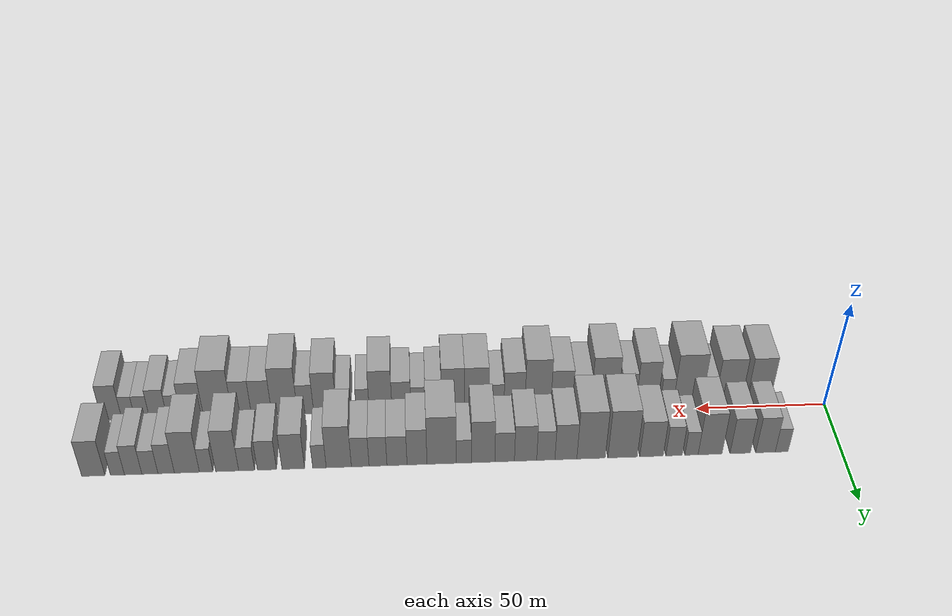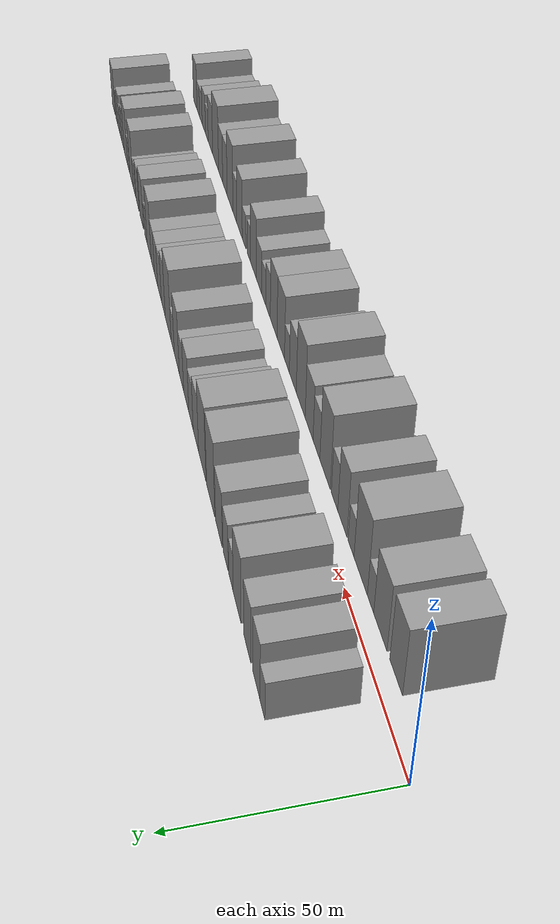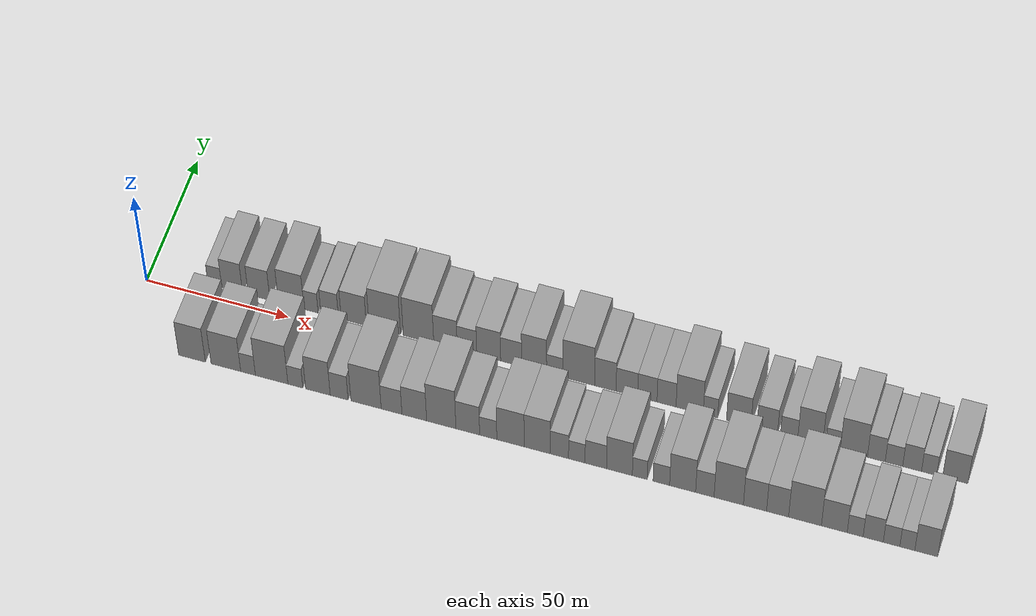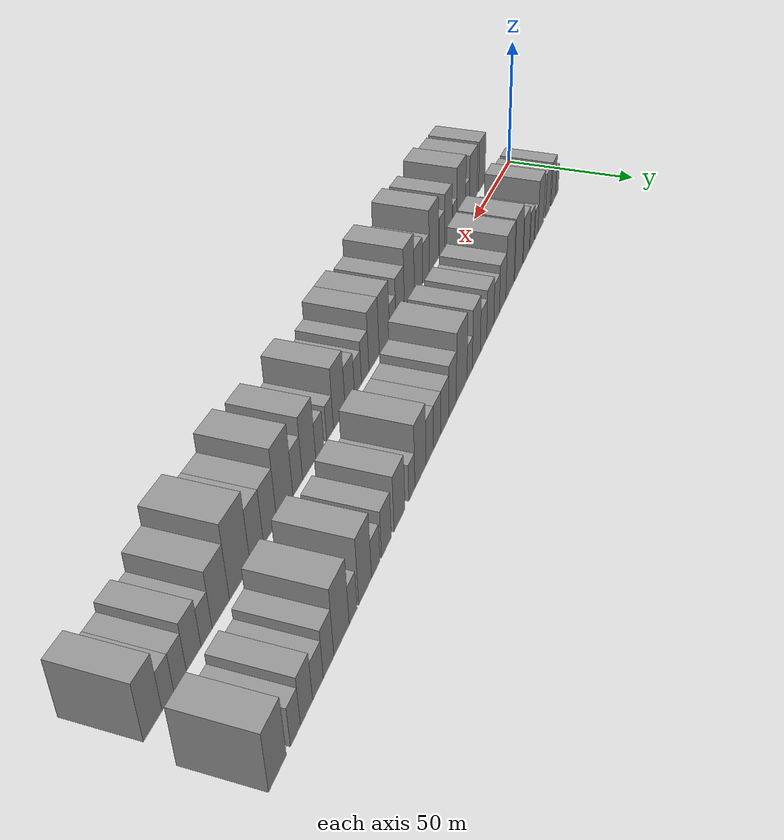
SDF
<sdf version="1.6">
 <world name="default">
  <scene>
   <sky><clouds><speed>12</speed></clouds></sky>
   <ambient>0.4 0.4 0.4 1</ambient>
   <background>0.7 0.7 0.7 1</background>
   <shadows>1</shadows>
  </scene>
  <gravity>0 0 -9.8066</gravity>
  <magnetic_field>6e-06 2.3e-05 -4.2e-05</magnetic_field>
  <physics default="0" name="default_physics" type="ode">
   <ode>
    <solver>
     <type>quick</type>
     <iters>10</iters>
     <sor>1.0</sor>
     <use_dynamic_moi_rescaling>0</use_dynamic_moi_rescaling>
    </solver>
    <constraints>
     <cfm>0</cfm>
     <erp>0.2</erp>
     <contact_max_correcting_vel>100</contact_max_correcting_vel>
     <contact_surface_layer>0.001</contact_surface_layer>
    </constraints>
   </ode>
   <max_step_size>0.004</max_step_size>
   <real_time_factor>1</real_time_factor>
   <real_time_update_rate>250</real_time_update_rate>
  </physics>
  <light name="sun" type="directional">
   <pose>0 0 10 0 0 0</pose>
   <diffuse>0.8 0.8 0.8 1</diffuse>
   <specular>0.2 0.2 0.2 1</specular>
   <attenuation>
    <range>1000</range>
    <constant>0.9</constant>
    <linear>0.01</linear>
    <quadratic>0.001</quadratic>
   </attenuation>
   <direction>-0.5 0.1 -0.9</direction>
  </light>
  <model name="building_1">
   <static>1</static>
   <pose>22.4527 14.5000 0 0.000000 0.000000 1.570796</pose>
   <link name="link">
    <pose>0 0 6.00 0 0 0</pose>
    <collision name="collision"><geometry><box><size>20.0000 4.9055 12.0000</size></box></geometry></collision>
    <visual name="visual">
     <cast_shadows>0</cast_shadows>
     <geometry><box><size>20.0000 4.9055 12.0000</size></box></geometry>
     <material>
      <script>
       <uri>model://grey_wall/materials/scripts</uri>
       <uri>model://grey_wall/materials/textures</uri>
       <name>vrc/grey_wall</name>
      </script>
     </material>
    </visual>
   </link>
  </model>
  <model name="building_2">
   <static>1</static>
   <pose>28.5818 14.5000 0 0.000000 0.000000 1.570796</pose>
   <link name="link">
    <pose>0 0 9.00 0 0 0</pose>
    <collision name="collision"><geometry><box><size>20.0000 7.3527 18.0000</size></box></geometry></collision>
    <visual name="visual">
     <cast_shadows>0</cast_shadows>
     <geometry><box><size>20.0000 7.3527 18.0000</size></box></geometry>
     <material>
      <script>
       <uri>model://grey_wall/materials/scripts</uri>
       <uri>model://grey_wall/materials/textures</uri>
       <name>vrc/grey_wall</name>
      </script>
     </material>
    </visual>
   </link>
  </model>
  <model name="building_3">
   <static>1</static>
   <pose>38.1045 14.5000 0 0.000000 0.000000 1.570796</pose>
   <link name="link">
    <pose>0 0 9.00 0 0 0</pose>
    <collision name="collision"><geometry><box><size>20.0000 7.6926 18.0000</size></box></geometry></collision>
    <visual name="visual">
     <cast_shadows>0</cast_shadows>
     <geometry><box><size>20.0000 7.6926 18.0000</size></box></geometry>
     <material>
      <script>
       <uri>model://grey_wall/materials/scripts</uri>
       <uri>model://grey_wall/materials/textures</uri>
       <name>vrc/grey_wall</name>
      </script>
     </material>
    </visual>
   </link>
  </model>
  <model name="building_4">
   <static>1</static>
   <pose>49.4682 14.5000 0 0.000000 0.000000 1.570796</pose>
   <link name="link">
    <pose>0 0 10.50 0 0 0</pose>
    <collision name="collision"><geometry><box><size>20.0000 9.0349 21.0000</size></box></geometry></collision>
    <visual name="visual">
     <cast_shadows>0</cast_shadows>
     <geometry><box><size>20.0000 9.0349 21.0000</size></box></geometry>
     <material>
      <script>
       <uri>model://grey_wall/materials/scripts</uri>
       <uri>model://grey_wall/materials/textures</uri>
       <name>vrc/grey_wall</name>
      </script>
     </material>
    </visual>
   </link>
  </model>
  <model name="building_5">
   <static>1</static>
   <pose>56.4635 14.5000 0 0.000000 0.000000 1.570796</pose>
   <link name="link">
    <pose>0 0 6.00 0 0 0</pose>
    <collision name="collision"><geometry><box><size>20.0000 4.9556 12.0000</size></box></geometry></collision>
    <visual name="visual">
     <cast_shadows>0</cast_shadows>
     <geometry><box><size>20.0000 4.9556 12.0000</size></box></geometry>
     <material>
      <script>
       <uri>model://grey_wall/materials/scripts</uri>
       <uri>model://grey_wall/materials/textures</uri>
       <name>vrc/grey_wall</name>
      </script>
     </material>
    </visual>
   </link>
  </model>
  <model name="building_6">
   <static>1</static>
   <pose>63.0217 14.5000 0 0.000000 0.000000 1.570796</pose>
   <link name="link">
    <pose>0 0 7.50 0 0 0</pose>
    <collision name="collision"><geometry><box><size>20.0000 6.1607 15.0000</size></box></geometry></collision>
    <visual name="visual">
     <cast_shadows>0</cast_shadows>
     <geometry><box><size>20.0000 6.1607 15.0000</size></box></geometry>
     <material>
      <script>
       <uri>model://grey_wall/materials/scripts</uri>
       <uri>model://grey_wall/materials/textures</uri>
       <name>vrc/grey_wall</name>
      </script>
     </material>
    </visual>
   </link>
  </model>
  <model name="building_7">
   <static>1</static>
   <pose>71.4967 14.5000 0 0.000000 0.000000 1.570796</pose>
   <link name="link">
    <pose>0 0 9.00 0 0 0</pose>
    <collision name="collision"><geometry><box><size>20.0000 8.7894 18.0000</size></box></geometry></collision>
    <visual name="visual">
     <cast_shadows>0</cast_shadows>
     <geometry><box><size>20.0000 8.7894 18.0000</size></box></geometry>
     <material>
      <script>
       <uri>model://grey_wall/materials/scripts</uri>
       <uri>model://grey_wall/materials/textures</uri>
       <name>vrc/grey_wall</name>
      </script>
     </material>
    </visual>
   </link>
  </model>
  <model name="building_8">
   <static>1</static>
   <pose>82.3796 14.5000 0 0.000000 0.000000 1.570796</pose>
   <link name="link">
    <pose>0 0 12.00 0 0 0</pose>
    <collision name="collision"><geometry><box><size>20.0000 10.9763 24.0000</size></box></geometry></collision>
    <visual name="visual">
     <cast_shadows>0</cast_shadows>
     <geometry><box><size>20.0000 10.9763 24.0000</size></box></geometry>
     <material>
      <script>
       <uri>model://grey_wall/materials/scripts</uri>
       <uri>model://grey_wall/materials/textures</uri>
       <name>vrc/grey_wall</name>
      </script>
     </material>
    </visual>
   </link>
  </model>
  <model name="building_9">
   <static>1</static>
   <pose>94.1800 14.5000 0 0.000000 0.000000 1.570796</pose>
   <link name="link">
    <pose>0 0 12.00 0 0 0</pose>
    <collision name="collision"><geometry><box><size>20.0000 10.6246 24.0000</size></box></geometry></collision>
    <visual name="visual">
     <cast_shadows>0</cast_shadows>
     <geometry><box><size>20.0000 10.6246 24.0000</size></box></geometry>
     <material>
      <script>
       <uri>model://grey_wall/materials/scripts</uri>
       <uri>model://grey_wall/materials/textures</uri>
       <name>vrc/grey_wall</name>
      </script>
     </material>
    </visual>
   </link>
  </model>
  <model name="building_10">
   <static>1</static>
   <pose>103.5946 14.5000 0 0.000000 0.000000 1.570796</pose>
   <link name="link">
    <pose>0 0 9.00 0 0 0</pose>
    <collision name="collision"><geometry><box><size>20.0000 8.2046 18.0000</size></box></geometry></collision>
    <visual name="visual">
     <cast_shadows>0</cast_shadows>
     <geometry><box><size>20.0000 8.2046 18.0000</size></box></geometry>
     <material>
      <script>
       <uri>model://grey_wall/materials/scripts</uri>
       <uri>model://grey_wall/materials/textures</uri>
       <name>vrc/grey_wall</name>
      </script>
     </material>
    </visual>
   </link>
  </model>
  <model name="building_11">
   <static>1</static>
   <pose>111.0911 14.5000 0 0.000000 0.000000 1.570796</pose>
   <link name="link">
    <pose>0 0 7.50 0 0 0</pose>
    <collision name="collision"><geometry><box><size>20.0000 6.7883 15.0000</size></box></geometry></collision>
    <visual name="visual">
     <cast_shadows>0</cast_shadows>
     <geometry><box><size>20.0000 6.7883 15.0000</size></box></geometry>
     <material>
      <script>
       <uri>model://grey_wall/materials/scripts</uri>
       <uri>model://grey_wall/materials/textures</uri>
       <name>vrc/grey_wall</name>
      </script>
     </material>
    </visual>
   </link>
  </model>
  <model name="building_12">
   <static>1</static>
   <pose>118.6386 14.5000 0 0.000000 0.000000 1.570796</pose>
   <link name="link">
    <pose>0 0 9.00 0 0 0</pose>
    <collision name="collision"><geometry><box><size>20.0000 8.3067 18.0000</size></box></geometry></collision>
    <visual name="visual">
     <cast_shadows>0</cast_shadows>
     <geometry><box><size>20.0000 8.3067 18.0000</size></box></geometry>
     <material>
      <script>
       <uri>model://grey_wall/materials/scripts</uri>
       <uri>model://grey_wall/materials/textures</uri>
       <name>vrc/grey_wall</name>
      </script>
     </material>
    </visual>
   </link>
  </model>
  <model name="building_13">
   <static>1</static>
   <pose>126.4335 14.5000 0 0.000000 0.000000 1.570796</pose>
   <link name="link">
    <pose>0 0 7.50 0 0 0</pose>
    <collision name="collision"><geometry><box><size>20.0000 7.2832 15.0000</size></box></geometry></collision>
    <visual name="visual">
     <cast_shadows>0</cast_shadows>
     <geometry><box><size>20.0000 7.2832 15.0000</size></box></geometry>
     <material>
      <script>
       <uri>model://grey_wall/materials/scripts</uri>
       <uri>model://grey_wall/materials/textures</uri>
       <name>vrc/grey_wall</name>
      </script>
     </material>
    </visual>
   </link>
  </model>
  <model name="building_14">
   <static>1</static>
   <pose>134.3953 14.5000 0 0.000000 0.000000 1.570796</pose>
   <link name="link">
    <pose>0 0 10.50 0 0 0</pose>
    <collision name="collision"><geometry><box><size>20.0000 8.6404 21.0000</size></box></geometry></collision>
    <visual name="visual">
     <cast_shadows>0</cast_shadows>
     <geometry><box><size>20.0000 8.6404 21.0000</size></box></geometry>
     <material>
      <script>
       <uri>model://grey_wall/materials/scripts</uri>
       <uri>model://grey_wall/materials/textures</uri>
       <name>vrc/grey_wall</name>
      </script>
     </material>
    </visual>
   </link>
  </model>
  <model name="building_15">
   <static>1</static>
   <pose>141.5295 14.5000 0 0.000000 0.000000 1.570796</pose>
   <link name="link">
    <pose>0 0 6.00 0 0 0</pose>
    <collision name="collision"><geometry><box><size>20.0000 5.6282 12.0000</size></box></geometry></collision>
    <visual name="visual">
     <cast_shadows>0</cast_shadows>
     <geometry><box><size>20.0000 5.6282 12.0000</size></box></geometry>
     <material>
      <script>
       <uri>model://grey_wall/materials/scripts</uri>
       <uri>model://grey_wall/materials/textures</uri>
       <name>vrc/grey_wall</name>
      </script>
     </material>
    </visual>
   </link>
  </model>
  <model name="building_16">
   <static>1</static>
   <pose>149.8142 14.5000 0 0.000000 0.000000 1.570796</pose>
   <link name="link">
    <pose>0 0 12.00 0 0 0</pose>
    <collision name="collision"><geometry><box><size>20.0000 10.9413 24.0000</size></box></geometry></collision>
    <visual name="visual">
     <cast_shadows>0</cast_shadows>
     <geometry><box><size>20.0000 10.9413 24.0000</size></box></geometry>
     <material>
      <script>
       <uri>model://grey_wall/materials/scripts</uri>
       <uri>model://grey_wall/materials/textures</uri>
       <name>vrc/grey_wall</name>
      </script>
     </material>
    </visual>
   </link>
  </model>
  <model name="building_17">
   <static>1</static>
   <pose>158.9749 14.5000 0 0.000000 0.000000 1.570796</pose>
   <link name="link">
    <pose>0 0 9.00 0 0 0</pose>
    <collision name="collision"><geometry><box><size>20.0000 7.3801 18.0000</size></box></geometry></collision>
    <visual name="visual">
     <cast_shadows>0</cast_shadows>
     <geometry><box><size>20.0000 7.3801 18.0000</size></box></geometry>
     <material>
      <script>
       <uri>model://grey_wall/materials/scripts</uri>
       <uri>model://grey_wall/materials/textures</uri>
       <name>vrc/grey_wall</name>
      </script>
     </material>
    </visual>
   </link>
  </model>
  <model name="building_18">
   <static>1</static>
   <pose>166.3791 14.5000 0 0.000000 0.000000 1.570796</pose>
   <link name="link">
    <pose>0 0 7.50 0 0 0</pose>
    <collision name="collision"><geometry><box><size>20.0000 7.4284 15.0000</size></box></geometry></collision>
    <visual name="visual">
     <cast_shadows>0</cast_shadows>
     <geometry><box><size>20.0000 7.4284 15.0000</size></box></geometry>
     <material>
      <script>
       <uri>model://grey_wall/materials/scripts</uri>
       <uri>model://grey_wall/materials/textures</uri>
       <name>vrc/grey_wall</name>
      </script>
     </material>
    </visual>
   </link>
  </model>
  <model name="building_19">
   <static>1</static>
   <pose>173.3979 14.5000 0 0.000000 0.000000 1.570796</pose>
   <link name="link">
    <pose>0 0 7.50 0 0 0</pose>
    <collision name="collision"><geometry><box><size>20.0000 6.6092 15.0000</size></box></geometry></collision>
    <visual name="visual">
     <cast_shadows>0</cast_shadows>
     <geometry><box><size>20.0000 6.6092 15.0000</size></box></geometry>
     <material>
      <script>
       <uri>model://grey_wall/materials/scripts</uri>
       <uri>model://grey_wall/materials/textures</uri>
       <name>vrc/grey_wall</name>
      </script>
     </material>
    </visual>
   </link>
  </model>
  <model name="building_20">
   <static>1</static>
   <pose>179.9726 14.5000 0 0.000000 0.000000 1.570796</pose>
   <link name="link">
    <pose>0 0 7.50 0 0 0</pose>
    <collision name="collision"><geometry><box><size>20.0000 6.5402 15.0000</size></box></geometry></collision>
    <visual name="visual">
     <cast_shadows>0</cast_shadows>
     <geometry><box><size>20.0000 6.5402 15.0000</size></box></geometry>
     <material>
      <script>
       <uri>model://grey_wall/materials/scripts</uri>
       <uri>model://grey_wall/materials/textures</uri>
       <name>vrc/grey_wall</name>
      </script>
     </material>
    </visual>
   </link>
  </model>
  <model name="building_21">
   <static>1</static>
   <pose>187.8923 14.5000 0 0.000000 0.000000 1.570796</pose>
   <link name="link">
    <pose>0 0 10.50 0 0 0</pose>
    <collision name="collision"><geometry><box><size>20.0000 9.2992 21.0000</size></box></geometry></collision>
    <visual name="visual">
     <cast_shadows>0</cast_shadows>
     <geometry><box><size>20.0000 9.2992 21.0000</size></box></geometry>
     <material>
      <script>
       <uri>model://grey_wall/materials/scripts</uri>
       <uri>model://grey_wall/materials/textures</uri>
       <name>vrc/grey_wall</name>
      </script>
     </material>
    </visual>
   </link>
  </model>
  <model name="building_22">
   <static>1</static>
   <pose>195.0158 14.5000 0 0.000000 0.000000 1.570796</pose>
   <link name="link">
    <pose>0 0 6.00 0 0 0</pose>
    <collision name="collision"><geometry><box><size>20.0000 4.9476 12.0000</size></box></geometry></collision>
    <visual name="visual">
     <cast_shadows>0</cast_shadows>
     <geometry><box><size>20.0000 4.9476 12.0000</size></box></geometry>
     <material>
      <script>
       <uri>model://grey_wall/materials/scripts</uri>
       <uri>model://grey_wall/materials/textures</uri>
       <name>vrc/grey_wall</name>
      </script>
     </material>
    </visual>
   </link>
  </model>
  <model name="building_23">
   <static>1</static>
   <pose>204.6551 14.5000 0 0.000000 0.000000 1.570796</pose>
   <link name="link">
    <pose>0 0 9.00 0 0 0</pose>
    <collision name="collision"><geometry><box><size>20.0000 8.3310 18.0000</size></box></geometry></collision>
    <visual name="visual">
     <cast_shadows>0</cast_shadows>
     <geometry><box><size>20.0000 8.3310 18.0000</size></box></geometry>
     <material>
      <script>
       <uri>model://grey_wall/materials/scripts</uri>
       <uri>model://grey_wall/materials/textures</uri>
       <name>vrc/grey_wall</name>
      </script>
     </material>
    </visual>
   </link>
  </model>
  <model name="building_24">
   <static>1</static>
   <pose>214.3445 14.5000 0 0.000000 0.000000 1.570796</pose>
   <link name="link">
    <pose>0 0 7.50 0 0 0</pose>
    <collision name="collision"><geometry><box><size>20.0000 7.0478 15.0000</size></box></geometry></collision>
    <visual name="visual">
     <cast_shadows>0</cast_shadows>
     <geometry><box><size>20.0000 7.0478 15.0000</size></box></geometry>
     <material>
      <script>
       <uri>model://grey_wall/materials/scripts</uri>
       <uri>model://grey_wall/materials/textures</uri>
       <name>vrc/grey_wall</name>
      </script>
     </material>
    </visual>
   </link>
  </model>
  <model name="building_25">
   <static>1</static>
   <pose>221.7925 14.5000 0 0.000000 0.000000 1.570796</pose>
   <link name="link">
    <pose>0 0 6.00 0 0 0</pose>
    <collision name="collision"><geometry><box><size>20.0000 5.8482 12.0000</size></box></geometry></collision>
    <visual name="visual">
     <cast_shadows>0</cast_shadows>
     <geometry><box><size>20.0000 5.8482 12.0000</size></box></geometry>
     <material>
      <script>
       <uri>model://grey_wall/materials/scripts</uri>
       <uri>model://grey_wall/materials/textures</uri>
       <name>vrc/grey_wall</name>
      </script>
     </material>
    </visual>
   </link>
  </model>
  <model name="building_26">
   <static>1</static>
   <pose>228.9413 14.5000 0 0.000000 0.000000 1.570796</pose>
   <link name="link">
    <pose>0 0 10.50 0 0 0</pose>
    <collision name="collision"><geometry><box><size>20.0000 8.4494 21.0000</size></box></geometry></collision>
    <visual name="visual">
     <cast_shadows>0</cast_shadows>
     <geometry><box><size>20.0000 8.4494 21.0000</size></box></geometry>
     <material>
      <script>
       <uri>model://grey_wall/materials/scripts</uri>
       <uri>model://grey_wall/materials/textures</uri>
       <name>vrc/grey_wall</name>
      </script>
     </material>
    </visual>
   </link>
  </model>
  <model name="building_27">
   <static>1</static>
   <pose>236.6416 14.5000 0 0.000000 0.000000 1.570796</pose>
   <link name="link">
    <pose>0 0 6.00 0 0 0</pose>
    <collision name="collision"><geometry><box><size>20.0000 4.9512 12.0000</size></box></geometry></collision>
    <visual name="visual">
     <cast_shadows>0</cast_shadows>
     <geometry><box><size>20.0000 4.9512 12.0000</size></box></geometry>
     <material>
      <script>
       <uri>model://grey_wall/materials/scripts</uri>
       <uri>model://grey_wall/materials/textures</uri>
       <name>vrc/grey_wall</name>
      </script>
     </material>
    </visual>
   </link>
  </model>
  <model name="building_28">
   <static>1</static>
   <pose>243.6999 14.5000 0 0.000000 0.000000 1.570796</pose>
   <link name="link">
    <pose>0 0 10.50 0 0 0</pose>
    <collision name="collision"><geometry><box><size>20.0000 9.1655 21.0000</size></box></geometry></collision>
    <visual name="visual">
     <cast_shadows>0</cast_shadows>
     <geometry><box><size>20.0000 9.1655 21.0000</size></box></geometry>
     <material>
      <script>
       <uri>model://grey_wall/materials/scripts</uri>
       <uri>model://grey_wall/materials/textures</uri>
       <name>vrc/grey_wall</name>
      </script>
     </material>
    </visual>
   </link>
  </model>
  <model name="building_29">
   <static>1</static>
   <pose>251.2862 14.5000 0 0.000000 0.000000 1.570796</pose>
   <link name="link">
    <pose>0 0 7.50 0 0 0</pose>
    <collision name="collision"><geometry><box><size>20.0000 6.0071 15.0000</size></box></geometry></collision>
    <visual name="visual">
     <cast_shadows>0</cast_shadows>
     <geometry><box><size>20.0000 6.0071 15.0000</size></box></geometry>
     <material>
      <script>
       <uri>model://grey_wall/materials/scripts</uri>
       <uri>model://grey_wall/materials/textures</uri>
       <name>vrc/grey_wall</name>
      </script>
     </material>
    </visual>
   </link>
  </model>
  <model name="building_30">
   <static>1</static>
   <pose>257.2351 14.5000 0 0.000000 0.000000 1.570796</pose>
   <link name="link">
    <pose>0 0 6.00 0 0 0</pose>
    <collision name="collision"><geometry><box><size>20.0000 5.8907 12.0000</size></box></geometry></collision>
    <visual name="visual">
     <cast_shadows>0</cast_shadows>
     <geometry><box><size>20.0000 5.8907 12.0000</size></box></geometry>
     <material>
      <script>
       <uri>model://grey_wall/materials/scripts</uri>
       <uri>model://grey_wall/materials/textures</uri>
       <name>vrc/grey_wall</name>
      </script>
     </material>
    </visual>
   </link>
  </model>
  <model name="building_31">
   <static>1</static>
   <pose>263.3478 14.5000 0 0.000000 0.000000 1.570796</pose>
   <link name="link">
    <pose>0 0 7.50 0 0 0</pose>
    <collision name="collision"><geometry><box><size>20.0000 6.3346 15.0000</size></box></geometry></collision>
    <visual name="visual">
     <cast_shadows>0</cast_shadows>
     <geometry><box><size>20.0000 6.3346 15.0000</size></box></geometry>
     <material>
      <script>
       <uri>model://grey_wall/materials/scripts</uri>
       <uri>model://grey_wall/materials/textures</uri>
       <name>vrc/grey_wall</name>
      </script>
     </material>
    </visual>
   </link>
  </model>
  <model name="building_32">
   <static>1</static>
   <pose>269.0631 14.5000 0 0.000000 0.000000 1.570796</pose>
   <link name="link">
    <pose>0 0 6.00 0 0 0</pose>
    <collision name="collision"><geometry><box><size>20.0000 5.0959 12.0000</size></box></geometry></collision>
    <visual name="visual">
     <cast_shadows>0</cast_shadows>
     <geometry><box><size>20.0000 5.0959 12.0000</size></box></geometry>
     <material>
      <script>
       <uri>model://grey_wall/materials/scripts</uri>
       <uri>model://grey_wall/materials/textures</uri>
       <name>vrc/grey_wall</name>
      </script>
     </material>
    </visual>
   </link>
  </model>
  <model name="building_33">
   <static>1</static>
   <pose>277.8406 14.5000 0 0.000000 0.000000 1.570796</pose>
   <link name="link">
    <pose>0 0 9.00 0 0 0</pose>
    <collision name="collision"><geometry><box><size>20.0000 8.4593 18.0000</size></box></geometry></collision>
    <visual name="visual">
     <cast_shadows>0</cast_shadows>
     <geometry><box><size>20.0000 8.4593 18.0000</size></box></geometry>
     <material>
      <script>
       <uri>model://grey_wall/materials/scripts</uri>
       <uri>model://grey_wall/materials/textures</uri>
       <name>vrc/grey_wall</name>
      </script>
     </material>
    </visual>
   </link>
  </model>
  <model name="building_34">
   <static>1</static>
   <pose>24.6891 -14.5000 0 0.000000 0.000000 1.570796</pose>
   <link name="link">
    <pose>0 0 10.50 0 0 0</pose>
    <collision name="collision"><geometry><box><size>20.0000 9.3783 21.0000</size></box></geometry></collision>
    <visual name="visual">
     <cast_shadows>0</cast_shadows>
     <geometry><box><size>20.0000 9.3783 21.0000</size></box></geometry>
     <material>
      <script>
       <uri>model://grey_wall/materials/scripts</uri>
       <uri>model://grey_wall/materials/textures</uri>
       <name>vrc/grey_wall</name>
      </script>
     </material>
    </visual>
   </link>
  </model>
  <model name="building_35">
   <static>1</static>
   <pose>36.5722 -14.5000 0 0.000000 0.000000 1.570796</pose>
   <link name="link">
    <pose>0 0 10.50 0 0 0</pose>
    <collision name="collision"><geometry><box><size>20.0000 10.3879 21.0000</size></box></geometry></collision>
    <visual name="visual">
     <cast_shadows>0</cast_shadows>
     <geometry><box><size>20.0000 10.3879 21.0000</size></box></geometry>
     <material>
      <script>
       <uri>model://grey_wall/materials/scripts</uri>
       <uri>model://grey_wall/materials/textures</uri>
       <name>vrc/grey_wall</name>
      </script>
     </material>
    </visual>
   </link>
  </model>
  <model name="building_36">
   <static>1</static>
   <pose>44.3453 -14.5000 0 0.000000 0.000000 1.570796</pose>
   <link name="link">
    <pose>0 0 6.00 0 0 0</pose>
    <collision name="collision"><geometry><box><size>20.0000 5.1583 12.0000</size></box></geometry></collision>
    <visual name="visual">
     <cast_shadows>0</cast_shadows>
     <geometry><box><size>20.0000 5.1583 12.0000</size></box></geometry>
     <material>
      <script>
       <uri>model://grey_wall/materials/scripts</uri>
       <uri>model://grey_wall/materials/textures</uri>
       <name>vrc/grey_wall</name>
      </script>
     </material>
    </visual>
   </link>
  </model>
  <model name="building_37">
   <static>1</static>
   <pose>52.6037 -14.5000 0 0.000000 0.000000 1.570796</pose>
   <link name="link">
    <pose>0 0 12.00 0 0 0</pose>
    <collision name="collision"><geometry><box><size>20.0000 11.3585 24.0000</size></box></geometry></collision>
    <visual name="visual">
     <cast_shadows>0</cast_shadows>
     <geometry><box><size>20.0000 11.3585 24.0000</size></box></geometry>
     <material>
      <script>
       <uri>model://grey_wall/materials/scripts</uri>
       <uri>model://grey_wall/materials/textures</uri>
       <name>vrc/grey_wall</name>
      </script>
     </material>
    </visual>
   </link>
  </model>
  <model name="building_38">
   <static>1</static>
   <pose>60.8786 -14.5000 0 0.000000 0.000000 1.570796</pose>
   <link name="link">
    <pose>0 0 6.00 0 0 0</pose>
    <collision name="collision"><geometry><box><size>20.0000 5.1912 12.0000</size></box></geometry></collision>
    <visual name="visual">
     <cast_shadows>0</cast_shadows>
     <geometry><box><size>20.0000 5.1912 12.0000</size></box></geometry>
     <material>
      <script>
       <uri>model://grey_wall/materials/scripts</uri>
       <uri>model://grey_wall/materials/textures</uri>
       <name>vrc/grey_wall</name>
      </script>
     </material>
    </visual>
   </link>
  </model>
  <model name="building_39">
   <static>1</static>
   <pose>68.7389 -14.5000 0 0.000000 0.000000 1.570796</pose>
   <link name="link">
    <pose>0 0 10.50 0 0 0</pose>
    <collision name="collision"><geometry><box><size>20.0000 8.5294 21.0000</size></box></geometry></collision>
    <visual name="visual">
     <cast_shadows>0</cast_shadows>
     <geometry><box><size>20.0000 8.5294 21.0000</size></box></geometry>
     <material>
      <script>
       <uri>model://grey_wall/materials/scripts</uri>
       <uri>model://grey_wall/materials/textures</uri>
       <name>vrc/grey_wall</name>
      </script>
     </material>
    </visual>
   </link>
  </model>
  <model name="building_40">
   <static>1</static>
   <pose>76.1103 -14.5000 0 0.000000 0.000000 1.570796</pose>
   <link name="link">
    <pose>0 0 7.50 0 0 0</pose>
    <collision name="collision"><geometry><box><size>20.0000 6.2134 15.0000</size></box></geometry></collision>
    <visual name="visual">
     <cast_shadows>0</cast_shadows>
     <geometry><box><size>20.0000 6.2134 15.0000</size></box></geometry>
     <material>
      <script>
       <uri>model://grey_wall/materials/scripts</uri>
       <uri>model://grey_wall/materials/textures</uri>
       <name>vrc/grey_wall</name>
      </script>
     </material>
    </visual>
   </link>
  </model>
  <model name="building_41">
   <static>1</static>
   <pose>85.4564 -14.5000 0 0.000000 0.000000 1.570796</pose>
   <link name="link">
    <pose>0 0 12.00 0 0 0</pose>
    <collision name="collision"><geometry><box><size>20.0000 10.4787 24.0000</size></box></geometry></collision>
    <visual name="visual">
     <cast_shadows>0</cast_shadows>
     <geometry><box><size>20.0000 10.4787 24.0000</size></box></geometry>
     <material>
      <script>
       <uri>model://grey_wall/materials/scripts</uri>
       <uri>model://grey_wall/materials/textures</uri>
       <name>vrc/grey_wall</name>
      </script>
     </material>
    </visual>
   </link>
  </model>
  <model name="building_42">
   <static>1</static>
   <pose>94.2822 -14.5000 0 0.000000 0.000000 1.570796</pose>
   <link name="link">
    <pose>0 0 7.50 0 0 0</pose>
    <collision name="collision"><geometry><box><size>20.0000 7.1730 15.0000</size></box></geometry></collision>
    <visual name="visual">
     <cast_shadows>0</cast_shadows>
     <geometry><box><size>20.0000 7.1730 15.0000</size></box></geometry>
     <material>
      <script>
       <uri>model://grey_wall/materials/scripts</uri>
       <uri>model://grey_wall/materials/textures</uri>
       <name>vrc/grey_wall</name>
      </script>
     </material>
    </visual>
   </link>
  </model>
  <model name="building_43">
   <static>1</static>
   <pose>102.1374 -14.5000 0 0.000000 0.000000 1.570796</pose>
   <link name="link">
    <pose>0 0 9.00 0 0 0</pose>
    <collision name="collision"><geometry><box><size>20.0000 8.5374 18.0000</size></box></geometry></collision>
    <visual name="visual">
     <cast_shadows>0</cast_shadows>
     <geometry><box><size>20.0000 8.5374 18.0000</size></box></geometry>
     <material>
      <script>
       <uri>model://grey_wall/materials/scripts</uri>
       <uri>model://grey_wall/materials/textures</uri>
       <name>vrc/grey_wall</name>
      </script>
     </material>
    </visual>
   </link>
  </model>
  <model name="building_44">
   <static>1</static>
   <pose>111.4532 -14.5000 0 0.000000 0.000000 1.570796</pose>
   <link name="link">
    <pose>0 0 12.00 0 0 0</pose>
    <collision name="collision"><geometry><box><size>20.0000 10.0942 24.0000</size></box></geometry></collision>
    <visual name="visual">
     <cast_shadows>0</cast_shadows>
     <geometry><box><size>20.0000 10.0942 24.0000</size></box></geometry>
     <material>
      <script>
       <uri>model://grey_wall/materials/scripts</uri>
       <uri>model://grey_wall/materials/textures</uri>
       <name>vrc/grey_wall</name>
      </script>
     </material>
    </visual>
   </link>
  </model>
  <model name="building_45">
   <static>1</static>
   <pose>120.5824 -14.5000 0 0.000000 0.000000 1.570796</pose>
   <link name="link">
    <pose>0 0 9.00 0 0 0</pose>
    <collision name="collision"><geometry><box><size>20.0000 8.1641 18.0000</size></box></geometry></collision>
    <visual name="visual">
     <cast_shadows>0</cast_shadows>
     <geometry><box><size>20.0000 8.1641 18.0000</size></box></geometry>
     <material>
      <script>
       <uri>model://grey_wall/materials/scripts</uri>
       <uri>model://grey_wall/materials/textures</uri>
       <name>vrc/grey_wall</name>
      </script>
     </material>
    </visual>
   </link>
  </model>
  <model name="building_46">
   <static>1</static>
   <pose>127.6196 -14.5000 0 0.000000 0.000000 1.570796</pose>
   <link name="link">
    <pose>0 0 6.00 0 0 0</pose>
    <collision name="collision"><geometry><box><size>20.0000 5.9102 12.0000</size></box></geometry></collision>
    <visual name="visual">
     <cast_shadows>0</cast_shadows>
     <geometry><box><size>20.0000 5.9102 12.0000</size></box></geometry>
     <material>
      <script>
       <uri>model://grey_wall/materials/scripts</uri>
       <uri>model://grey_wall/materials/textures</uri>
       <name>vrc/grey_wall</name>
      </script>
     </material>
    </visual>
   </link>
  </model>
  <model name="building_47">
   <static>1</static>
   <pose>135.2846 -14.5000 0 0.000000 0.000000 1.570796</pose>
   <link name="link">
    <pose>0 0 10.50 0 0 0</pose>
    <collision name="collision"><geometry><box><size>20.0000 9.4199 21.0000</size></box></geometry></collision>
    <visual name="visual">
     <cast_shadows>0</cast_shadows>
     <geometry><box><size>20.0000 9.4199 21.0000</size></box></geometry>
     <material>
      <script>
       <uri>model://grey_wall/materials/scripts</uri>
       <uri>model://grey_wall/materials/textures</uri>
       <name>vrc/grey_wall</name>
      </script>
     </material>
    </visual>
   </link>
  </model>
  <model name="building_48">
   <static>1</static>
   <pose>144.4449 -14.5000 0 0.000000 0.000000 1.570796</pose>
   <link name="link">
    <pose>0 0 10.50 0 0 0</pose>
    <collision name="collision"><geometry><box><size>20.0000 8.9007 21.0000</size></box></geometry></collision>
    <visual name="visual">
     <cast_shadows>0</cast_shadows>
     <geometry><box><size>20.0000 8.9007 21.0000</size></box></geometry>
     <material>
      <script>
       <uri>model://grey_wall/materials/scripts</uri>
       <uri>model://grey_wall/materials/textures</uri>
       <name>vrc/grey_wall</name>
      </script>
     </material>
    </visual>
   </link>
  </model>
  <model name="building_49">
   <static>1</static>
   <pose>151.9982 -14.5000 0 0.000000 0.000000 1.570796</pose>
   <link name="link">
    <pose>0 0 7.50 0 0 0</pose>
    <collision name="collision"><geometry><box><size>20.0000 6.2058 15.0000</size></box></geometry></collision>
    <visual name="visual">
     <cast_shadows>0</cast_shadows>
     <geometry><box><size>20.0000 6.2058 15.0000</size></box></geometry>
     <material>
      <script>
       <uri>model://grey_wall/materials/scripts</uri>
       <uri>model://grey_wall/materials/textures</uri>
       <name>vrc/grey_wall</name>
      </script>
     </material>
    </visual>
   </link>
  </model>
  <model name="building_50">
   <static>1</static>
   <pose>157.9171 -14.5000 0 0.000000 0.000000 1.570796</pose>
   <link name="link">
    <pose>0 0 6.00 0 0 0</pose>
    <collision name="collision"><geometry><box><size>20.0000 5.6320 12.0000</size></box></geometry></collision>
    <visual name="visual">
     <cast_shadows>0</cast_shadows>
     <geometry><box><size>20.0000 5.6320 12.0000</size></box></geometry>
     <material>
      <script>
       <uri>model://grey_wall/materials/scripts</uri>
       <uri>model://grey_wall/materials/textures</uri>
       <name>vrc/grey_wall</name>
      </script>
     </material>
    </visual>
   </link>
  </model>
  <model name="building_51">
   <static>1</static>
   <pose>164.3888 -14.5000 0 0.000000 0.000000 1.570796</pose>
   <link name="link">
    <pose>0 0 7.50 0 0 0</pose>
    <collision name="collision"><geometry><box><size>20.0000 7.3114 15.0000</size></box></geometry></collision>
    <visual name="visual">
     <cast_shadows>0</cast_shadows>
     <geometry><box><size>20.0000 7.3114 15.0000</size></box></geometry>
     <material>
      <script>
       <uri>model://grey_wall/materials/scripts</uri>
       <uri>model://grey_wall/materials/textures</uri>
       <name>vrc/grey_wall</name>
      </script>
     </material>
    </visual>
   </link>
  </model>
  <model name="building_52">
   <static>1</static>
   <pose>172.4327 -14.5000 0 0.000000 0.000000 1.570796</pose>
   <link name="link">
    <pose>0 0 10.50 0 0 0</pose>
    <collision name="collision"><geometry><box><size>20.0000 8.7764 21.0000</size></box></geometry></collision>
    <visual name="visual">
     <cast_shadows>0</cast_shadows>
     <geometry><box><size>20.0000 8.7764 21.0000</size></box></geometry>
     <material>
      <script>
       <uri>model://grey_wall/materials/scripts</uri>
       <uri>model://grey_wall/materials/textures</uri>
       <name>vrc/grey_wall</name>
      </script>
     </material>
    </visual>
   </link>
  </model>
  <model name="building_53">
   <static>1</static>
   <pose>179.3356 -14.5000 0 0.000000 0.000000 1.570796</pose>
   <link name="link">
    <pose>0 0 6.00 0 0 0</pose>
    <collision name="collision"><geometry><box><size>20.0000 5.0295 12.0000</size></box></geometry></collision>
    <visual name="visual">
     <cast_shadows>0</cast_shadows>
     <geometry><box><size>20.0000 5.0295 12.0000</size></box></geometry>
     <material>
      <script>
       <uri>model://grey_wall/materials/scripts</uri>
       <uri>model://grey_wall/materials/textures</uri>
       <name>vrc/grey_wall</name>
      </script>
     </material>
    </visual>
   </link>
  </model>
  <model name="building_54">
   <static>1</static>
   <pose>186.6545 -14.5000 0 0.000000 0.000000 1.570796</pose>
   <link name="link">
    <pose>0 0 6.00 0 0 0</pose>
    <collision name="collision"><geometry><box><size>20.0000 5.6083 12.0000</size></box></geometry></collision>
    <visual name="visual">
     <cast_shadows>0</cast_shadows>
     <geometry><box><size>20.0000 5.6083 12.0000</size></box></geometry>
     <material>
      <script>
       <uri>model://grey_wall/materials/scripts</uri>
       <uri>model://grey_wall/materials/textures</uri>
       <name>vrc/grey_wall</name>
      </script>
     </material>
    </visual>
   </link>
  </model>
  <model name="building_55">
   <static>1</static>
   <pose>193.8561 -14.5000 0 0.000000 0.000000 1.570796</pose>
   <link name="link">
    <pose>0 0 10.50 0 0 0</pose>
    <collision name="collision"><geometry><box><size>20.0000 8.7949 21.0000</size></box></geometry></collision>
    <visual name="visual">
     <cast_shadows>0</cast_shadows>
     <geometry><box><size>20.0000 8.7949 21.0000</size></box></geometry>
     <material>
      <script>
       <uri>model://grey_wall/materials/scripts</uri>
       <uri>model://grey_wall/materials/textures</uri>
       <name>vrc/grey_wall</name>
      </script>
     </material>
    </visual>
   </link>
  </model>
  <model name="building_56">
   <static>1</static>
   <pose>201.3664 -14.5000 0 0.000000 0.000000 1.570796</pose>
   <link name="link">
    <pose>0 0 7.50 0 0 0</pose>
    <collision name="collision"><geometry><box><size>20.0000 6.2258 15.0000</size></box></geometry></collision>
    <visual name="visual">
     <cast_shadows>0</cast_shadows>
     <geometry><box><size>20.0000 6.2258 15.0000</size></box></geometry>
     <material>
      <script>
       <uri>model://grey_wall/materials/scripts</uri>
       <uri>model://grey_wall/materials/textures</uri>
       <name>vrc/grey_wall</name>
      </script>
     </material>
    </visual>
   </link>
  </model>
  <model name="building_57">
   <static>1</static>
   <pose>209.4299 -14.5000 0 0.000000 0.000000 1.570796</pose>
   <link name="link">
    <pose>0 0 12.00 0 0 0</pose>
    <collision name="collision"><geometry><box><size>20.0000 9.9013 24.0000</size></box></geometry></collision>
    <visual name="visual">
     <cast_shadows>0</cast_shadows>
     <geometry><box><size>20.0000 9.9013 24.0000</size></box></geometry>
     <material>
      <script>
       <uri>model://grey_wall/materials/scripts</uri>
       <uri>model://grey_wall/materials/textures</uri>
       <name>vrc/grey_wall</name>
      </script>
     </material>
    </visual>
   </link>
  </model>
  <model name="building_58">
   <static>1</static>
   <pose>218.2733 -14.5000 0 0.000000 0.000000 1.570796</pose>
   <link name="link">
    <pose>0 0 9.00 0 0 0</pose>
    <collision name="collision"><geometry><box><size>20.0000 7.7855 18.0000</size></box></geometry></collision>
    <visual name="visual">
     <cast_shadows>0</cast_shadows>
     <geometry><box><size>20.0000 7.7855 18.0000</size></box></geometry>
     <material>
      <script>
       <uri>model://grey_wall/materials/scripts</uri>
       <uri>model://grey_wall/materials/textures</uri>
       <name>vrc/grey_wall</name>
      </script>
     </material>
    </visual>
   </link>
  </model>
  <model name="building_59">
   <static>1</static>
   <pose>225.8630 -14.5000 0 0.000000 0.000000 1.570796</pose>
   <link name="link">
    <pose>0 0 9.00 0 0 0</pose>
    <collision name="collision"><geometry><box><size>20.0000 7.3939 18.0000</size></box></geometry></collision>
    <visual name="visual">
     <cast_shadows>0</cast_shadows>
     <geometry><box><size>20.0000 7.3939 18.0000</size></box></geometry>
     <material>
      <script>
       <uri>model://grey_wall/materials/scripts</uri>
       <uri>model://grey_wall/materials/textures</uri>
       <name>vrc/grey_wall</name>
      </script>
     </material>
    </visual>
   </link>
  </model>
  <model name="building_60">
   <static>1</static>
   <pose>235.0526 -14.5000 0 0.000000 0.000000 1.570796</pose>
   <link name="link">
    <pose>0 0 12.00 0 0 0</pose>
    <collision name="collision"><geometry><box><size>20.0000 10.9851 24.0000</size></box></geometry></collision>
    <visual name="visual">
     <cast_shadows>0</cast_shadows>
     <geometry><box><size>20.0000 10.9851 24.0000</size></box></geometry>
     <material>
      <script>
       <uri>model://grey_wall/materials/scripts</uri>
       <uri>model://grey_wall/materials/textures</uri>
       <name>vrc/grey_wall</name>
      </script>
     </material>
    </visual>
   </link>
  </model>
  <model name="building_61">
   <static>1</static>
   <pose>244.8591 -14.5000 0 0.000000 0.000000 1.570796</pose>
   <link name="link">
    <pose>0 0 9.00 0 0 0</pose>
    <collision name="collision"><geometry><box><size>20.0000 8.6280 18.0000</size></box></geometry></collision>
    <visual name="visual">
     <cast_shadows>0</cast_shadows>
     <geometry><box><size>20.0000 8.6280 18.0000</size></box></geometry>
     <material>
      <script>
       <uri>model://grey_wall/materials/scripts</uri>
       <uri>model://grey_wall/materials/textures</uri>
       <name>vrc/grey_wall</name>
      </script>
     </material>
    </visual>
   </link>
  </model>
  <model name="building_62">
   <static>1</static>
   <pose>251.8295 -14.5000 0 0.000000 0.000000 1.570796</pose>
   <link name="link">
    <pose>0 0 6.00 0 0 0</pose>
    <collision name="collision"><geometry><box><size>20.0000 5.3128 12.0000</size></box></geometry></collision>
    <visual name="visual">
     <cast_shadows>0</cast_shadows>
     <geometry><box><size>20.0000 5.3128 12.0000</size></box></geometry>
     <material>
      <script>
       <uri>model://grey_wall/materials/scripts</uri>
       <uri>model://grey_wall/materials/textures</uri>
       <name>vrc/grey_wall</name>
      </script>
     </material>
    </visual>
   </link>
  </model>
  <model name="building_63">
   <static>1</static>
   <pose>257.8450 -14.5000 0 0.000000 0.000000 1.570796</pose>
   <link name="link">
    <pose>0 0 7.50 0 0 0</pose>
    <collision name="collision"><geometry><box><size>20.0000 6.7183 15.0000</size></box></geometry></collision>
    <visual name="visual">
     <cast_shadows>0</cast_shadows>
     <geometry><box><size>20.0000 6.7183 15.0000</size></box></geometry>
     <material>
      <script>
       <uri>model://grey_wall/materials/scripts</uri>
       <uri>model://grey_wall/materials/textures</uri>
       <name>vrc/grey_wall</name>
      </script>
     </material>
    </visual>
   </link>
  </model>
  <model name="building_64">
   <static>1</static>
   <pose>263.9574 -14.5000 0 0.000000 0.000000 1.570796</pose>
   <link name="link">
    <pose>0 0 6.00 0 0 0</pose>
    <collision name="collision"><geometry><box><size>20.0000 5.5066 12.0000</size></box></geometry></collision>
    <visual name="visual">
     <cast_shadows>0</cast_shadows>
     <geometry><box><size>20.0000 5.5066 12.0000</size></box></geometry>
     <material>
      <script>
       <uri>model://grey_wall/materials/scripts</uri>
       <uri>model://grey_wall/materials/textures</uri>
       <name>vrc/grey_wall</name>
      </script>
     </material>
    </visual>
   </link>
  </model>
  <model name="building_65">
   <static>1</static>
   <pose>269.2018 -14.5000 0 0.000000 0.000000 1.570796</pose>
   <link name="link">
    <pose>0 0 6.00 0 0 0</pose>
    <collision name="collision"><geometry><box><size>20.0000 4.9821 12.0000</size></box></geometry></collision>
    <visual name="visual">
     <cast_shadows>0</cast_shadows>
     <geometry><box><size>20.0000 4.9821 12.0000</size></box></geometry>
     <material>
      <script>
       <uri>model://grey_wall/materials/scripts</uri>
       <uri>model://grey_wall/materials/textures</uri>
       <name>vrc/grey_wall</name>
      </script>
     </material>
    </visual>
   </link>
  </model>
  <model name="building_66">
   <static>1</static>
   <pose>275.5016 -14.5000 0 0.000000 0.000000 1.570796</pose>
   <link name="link">
    <pose>0 0 9.00 0 0 0</pose>
    <collision name="collision"><geometry><box><size>20.0000 7.6176 18.0000</size></box></geometry></collision>
    <visual name="visual">
     <cast_shadows>0</cast_shadows>
     <geometry><box><size>20.0000 7.6176 18.0000</size></box></geometry>
     <material>
      <script>
       <uri>model://grey_wall/materials/scripts</uri>
       <uri>model://grey_wall/materials/textures</uri>
       <name>vrc/grey_wall</name>
      </script>
     </material>
    </visual>
   </link>
  </model>
 </world>
</sdf>
